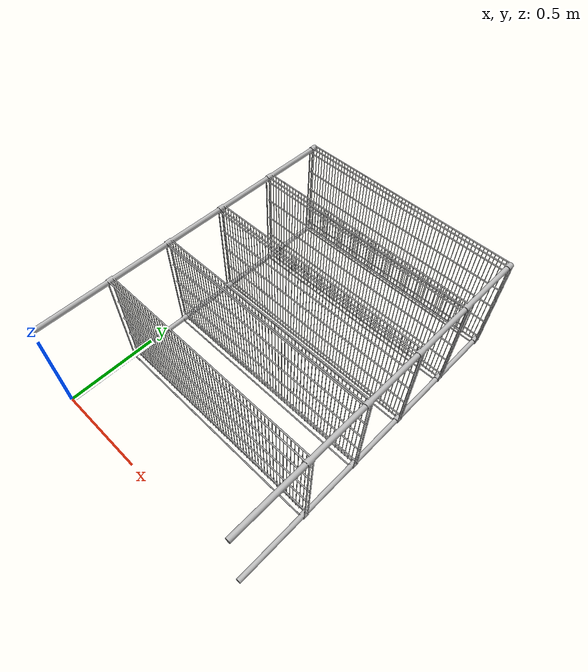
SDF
<?xml version="1.0" ?>
<sdf version="1.6">
  <model name="CSSD Shelf">
    <static>true</static>
    <link name="link">
      <collision name="collision">
        <geometry>
          <mesh>
            <scale>0.001 0.001 0.001</scale>
            <uri>model://CSSD Shelf/meshes/Abdullah's rack.STL</uri>
          </mesh>
        </geometry>
      </collision>
      <visual name="visual">
        <geometry>
          <mesh>
            <scale>0.001 0.001 0.001</scale>
            <uri>model://CSSD Shelf/meshes/Abdullah's rack.STL</uri>
          </mesh>
        </geometry>
      </visual>
    </link>
  </model>
</sdf>
